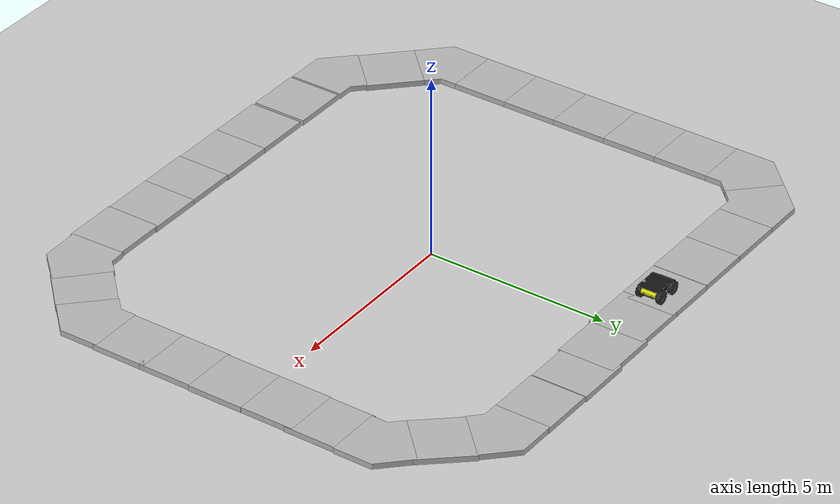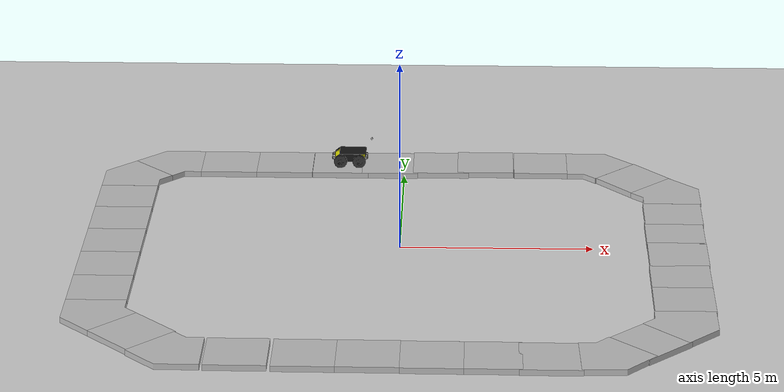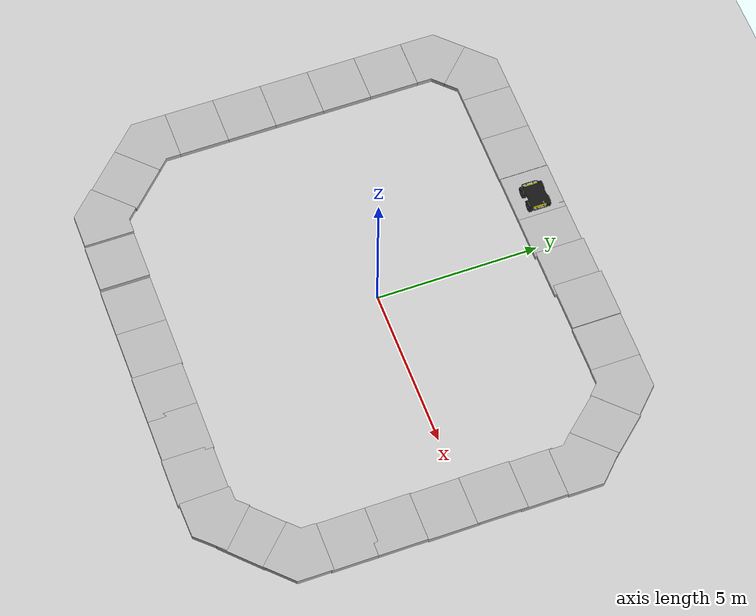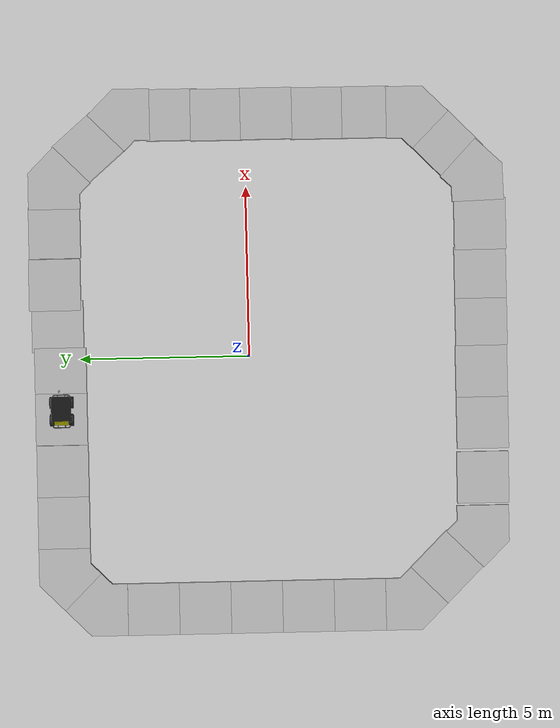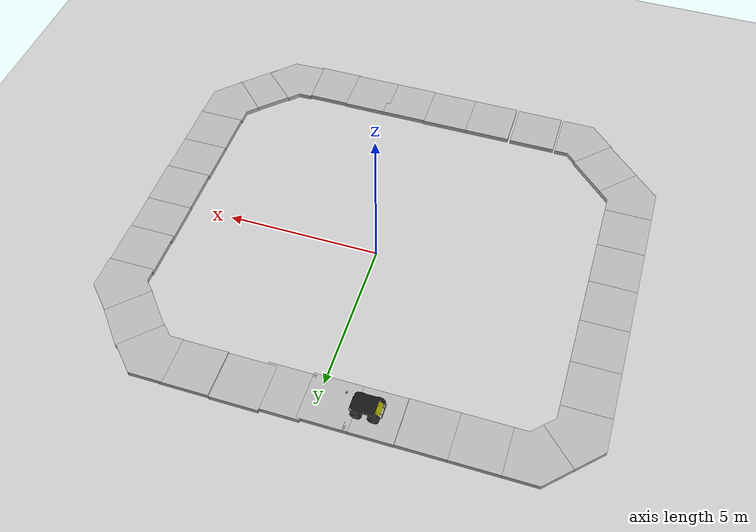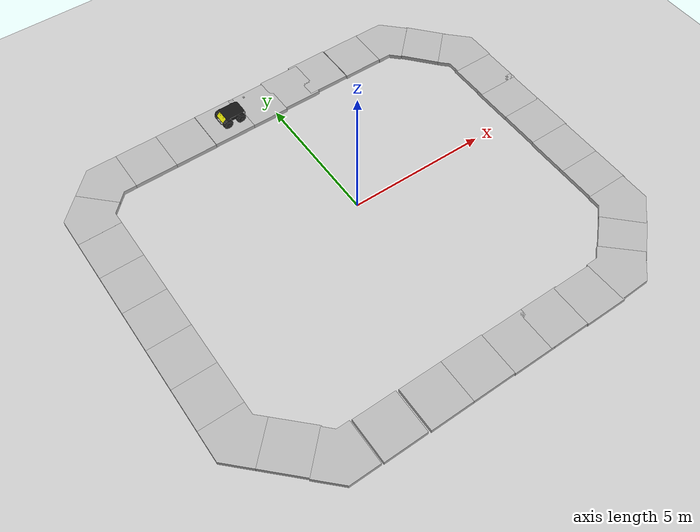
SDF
<sdf version="1.6">
 <world name="default">
  <light name="sun" type="directional">
   <pose>0 0 10 0 -0 0</pose>
   <diffuse>0.8 0.8 0.8 1</diffuse>
   <specular>0.2 0.2 0.2 1</specular>
   <attenuation>
    <range>1000</range>
    <constant>0.9</constant>
    <linear>0.01</linear>
    <quadratic>0.001</quadratic>
   </attenuation>
   <direction>-0.5 0.1 -0.9</direction>
  </light>
  <model name="ground_plane">
   <static>1</static>
   <link name="link">
    <collision name="collision">
     <geometry><plane><normal>0 0 1</normal><size>100 100</size></plane></geometry>
     <surface>
      <contact><collide_bitmask>65535</collide_bitmask></contact>
      <friction><ode><mu>100</mu><mu2>50</mu2></ode></friction>
     </surface>
    </collision>
    <visual name="visual">
     <cast_shadows>0</cast_shadows>
     <geometry><plane><normal>0 0 1</normal><size>100 100</size></plane></geometry>
     <material>
      <script><uri>file://media/materials/scripts/gazebo.material</uri><name>Gazebo/Grey</name></script>
     </material>
    </visual>
   </link>
  </model>
  <gravity>0 0 -9.8</gravity>
  <magnetic_field>6e-06 2.3e-05 -4.2e-05</magnetic_field>
  <atmosphere type="adiabatic"/>
  <physics name="default_physics" default="0" type="ode">
   <max_step_size>0.001</max_step_size>
   <real_time_factor>1</real_time_factor>
   <real_time_update_rate>1000</real_time_update_rate>
  </physics>
  <scene><ambient>0.4 0.4 0.4 1</ambient><background>0.7 0.7 0.7 1</background><shadows>1</shadows></scene>
  <spherical_coordinates>
   <surface_model>EARTH_WGS84</surface_model>
   <latitude_deg>0</latitude_deg>
   <longitude_deg>0</longitude_deg>
   <elevation>0</elevation>
   <heading_deg>0</heading_deg>
  </spherical_coordinates>
  <model name="walkway_metal_45">
   <static>1</static>
   <link name="link">
    <collision name="collision">
     <pose>0 0.538815 0.076075 0 -0 0</pose>
     <geometry><box><size>1.524 1.07763 0.15215</size></box></geometry>
    </collision>
    <collision name="collision2">
     <pose>0.15793 0.92 0.076075 0 0 -0.785398</pose>
     <geometry><box><size>1.524 1.07763 0.15215</size></box></geometry>
    </collision>
    <visual name="visual">
     <geometry>
      <mesh><scale>0.001 0.001 0.001</scale><uri>model://walkway_metal_45/meshes/mesh.obj</uri></mesh>
     </geometry>
    </visual>
   </link>
   <pose>-7.41453 3.73485 -0.000254 0 -0 0</pose>
  </model>
  <model name="walkway_metal_45_0">
   <static>1</static>
   <link name="link">
    <collision name="collision">
     <pose>0 0.538815 0.076075 0 -0 0</pose>
     <geometry><box><size>1.524 1.07763 0.15215</size></box></geometry>
    </collision>
    <collision name="collision2">
     <pose>0.15793 0.92 0.076075 0 0 -0.785398</pose>
     <geometry><box><size>1.524 1.07763 0.15215</size></box></geometry>
    </collision>
    <visual name="visual">
     <geometry>
      <mesh><scale>0.001 0.001 0.001</scale><uri>model://walkway_metal_45/meshes/mesh.obj</uri></mesh>
     </geometry>
    </visual>
   </link>
   <pose>-6.87552 5.03558 -0.000254 0 0 -0.785398</pose>
  </model>
  <model name="walkway_metal_straight">
   <static>1</static>
   <link name="link">
    <collision name="collision">
     <pose>0 0.762 0.076075 0 -0 0</pose>
     <geometry><box><size>1.524 1.524 0.15215</size></box></geometry>
    </collision>
    <visual name="visual">
     <geometry>
      <mesh><scale>0.001 0.001 0.001</scale><uri>model://walkway_metal_straight/meshes/mesh.obj</uri></mesh>
     </geometry>
    </visual>
   </link>
   <pose>-5.57462 5.5742 -0.000508 0 0 -1.5708</pose>
  </model>
  <model name="walkway_metal_straight_0">
   <static>1</static>
   <link name="link">
    <collision name="collision">
     <pose>0 0.762 0.076075 0 -0 0</pose>
     <geometry><box><size>1.524 1.524 0.15215</size></box></geometry>
    </collision>
    <visual name="visual">
     <geometry>
      <mesh><scale>0.001 0.001 0.001</scale><uri>model://walkway_metal_straight/meshes/mesh.obj</uri></mesh>
     </geometry>
    </visual>
   </link>
   <pose>-2.52662 5.5742 -0.000508 0 -0 1.5708</pose>
  </model>
  <model name="walkway_metal_straight_1">
   <static>1</static>
   <link name="link">
    <collision name="collision">
     <pose>0 0.762 0.076075 0 -0 0</pose>
     <geometry><box><size>1.524 1.524 0.15215</size></box></geometry>
    </collision>
    <visual name="visual">
     <geometry>
      <mesh><scale>0.001 0.001 0.001</scale><uri>model://walkway_metal_straight/meshes/mesh.obj</uri></mesh>
     </geometry>
    </visual>
   </link>
   <pose>-2.51644 5.58382 -0.000508 0 0 -1.5708</pose>
  </model>
  <model name="walkway_metal_straight_2">
   <static>1</static>
   <link name="link">
    <collision name="collision">
     <pose>0 0.762 0.076075 0 -0 0</pose>
     <geometry><box><size>1.524 1.524 0.15215</size></box></geometry>
    </collision>
    <visual name="visual">
     <geometry>
      <mesh><scale>0.001 0.001 0.001</scale><uri>model://walkway_metal_straight/meshes/mesh.obj</uri></mesh>
     </geometry>
    </visual>
   </link>
   <pose>-1.16667 5.58386 -0.000508 0 0 -1.5708</pose>
  </model>
  <model name="walkway_metal_45_3">
   <static>1</static>
   <link name="link">
    <collision name="collision">
     <pose>0 0.538815 0.076075 0 -0 0</pose>
     <geometry><box><size>1.524 1.07763 0.15215</size></box></geometry>
    </collision>
    <collision name="collision2">
     <pose>0.15793 0.92 0.076075 0 0 -0.785398</pose>
     <geometry><box><size>1.524 1.07763 0.15215</size></box></geometry>
    </collision>
    <visual name="visual">
     <geometry>
      <mesh><scale>0.001 0.001 0.001</scale><uri>model://walkway_metal_45/meshes/mesh.obj</uri></mesh>
     </geometry>
    </visual>
   </link>
   <pose>4.45182 5.67103 -0.000254 0 0 -1.5708</pose>
  </model>
  <model name="walkway_metal_45_4">
   <static>1</static>
   <link name="link">
    <collision name="collision">
     <pose>0 0.538815 0.076075 0 -0 0</pose>
     <geometry><box><size>1.524 1.07763 0.15215</size></box></geometry>
    </collision>
    <collision name="collision2">
     <pose>0.15793 0.92 0.076075 0 0 -0.785398</pose>
     <geometry><box><size>1.524 1.07763 0.15215</size></box></geometry>
    </collision>
    <visual name="visual">
     <geometry>
      <mesh><scale>0.001 0.001 0.001</scale><uri>model://walkway_metal_45/meshes/mesh.obj</uri></mesh>
     </geometry>
    </visual>
   </link>
   <pose>6.66734 4.1085 -0.000254 0 0 -2.35619</pose>
  </model>
  <model name="walkway_metal_straight_3">
   <static>1</static>
   <link name="link">
    <collision name="collision">
     <pose>0 0.762 0.076075 0 -0 0</pose>
     <geometry><box><size>1.524 1.524 0.15215</size></box></geometry>
    </collision>
    <visual name="visual">
     <geometry>
      <mesh><scale>0.001 0.001 0.001</scale><uri>model://walkway_metal_straight/meshes/mesh.obj</uri></mesh>
     </geometry>
    </visual>
   </link>
   <pose>7.16236 0.128675 -0.000508 0 0 -3.14159</pose>
  </model>
  <model name="walkway_metal_straight_4">
   <static>1</static>
   <link name="link">
    <collision name="collision">
     <pose>0 0.762 0.076075 0 -0 0</pose>
     <geometry><box><size>1.524 1.524 0.15215</size></box></geometry>
    </collision>
    <visual name="visual">
     <geometry>
      <mesh><scale>0.001 0.001 0.001</scale><uri>model://walkway_metal_straight/meshes/mesh.obj</uri></mesh>
     </geometry>
    </visual>
   </link>
   <pose>7.14064 -1.35181 -0.000508 0 0 -3.14159</pose>
  </model>
  <model name="walkway_metal_45_5">
   <static>1</static>
   <link name="link">
    <collision name="collision">
     <pose>0 0.538815 0.076075 0 -0 0</pose>
     <geometry><box><size>1.524 1.07763 0.15215</size></box></geometry>
    </collision>
    <collision name="collision2">
     <pose>0.15793 0.92 0.076075 0 0 -0.785398</pose>
     <geometry><box><size>1.524 1.07763 0.15215</size></box></geometry>
    </collision>
    <visual name="visual">
     <geometry>
      <mesh><scale>0.001 0.001 0.001</scale><uri>model://walkway_metal_45/meshes/mesh.obj</uri></mesh>
     </geometry>
    </visual>
   </link>
   <pose>7.11883 -4.18264 -0.000254 0 0 -3.14159</pose>
  </model>
  <model name="walkway_metal_straight_5">
   <static>1</static>
   <link name="link">
    <collision name="collision">
     <pose>0 0.762 0.076075 0 -0 0</pose>
     <geometry><box><size>1.524 1.524 0.15215</size></box></geometry>
    </collision>
    <visual name="visual">
     <geometry>
      <mesh><scale>0.001 0.001 0.001</scale><uri>model://walkway_metal_straight/meshes/mesh.obj</uri></mesh>
     </geometry>
    </visual>
   </link>
   <pose>7.13941 -2.74334 -0.000508 0 -0 3.14159</pose>
  </model>
  <model name="walkway_metal_45_9">
   <static>1</static>
   <link name="link">
    <collision name="collision">
     <pose>0 0.538815 0.076075 0 -0 0</pose>
     <geometry><box><size>1.524 1.07763 0.15215</size></box></geometry>
    </collision>
    <collision name="collision2">
     <pose>0.15793 0.92 0.076075 0 0 -0.785398</pose>
     <geometry><box><size>1.524 1.07763 0.15215</size></box></geometry>
    </collision>
    <visual name="visual">
     <geometry>
      <mesh><scale>0.001 0.001 0.001</scale><uri>model://walkway_metal_45/meshes/mesh.obj</uri></mesh>
     </geometry>
    </visual>
   </link>
   <pose>5.74542 -6.27089 -0.000254 0 -0 2.38587</pose>
  </model>
  <model name="walkway_metal_straight_6">
   <static>1</static>
   <link name="link">
    <collision name="collision">
     <pose>0 0.762 0.076075 0 -0 0</pose>
     <geometry><box><size>1.524 1.524 0.15215</size></box></geometry>
    </collision>
    <visual name="visual">
     <geometry>
      <mesh><scale>0.001 0.001 0.001</scale><uri>model://walkway_metal_straight/meshes/mesh.obj</uri></mesh>
     </geometry>
    </visual>
   </link>
   <pose>3.01304 -6.89051 -0.000508 0 0 -1.5708</pose>
  </model>
  <model name="walkway_metal_straight_7">
   <static>1</static>
   <link name="link">
    <collision name="collision">
     <pose>0 0.762 0.076075 0 -0 0</pose>
     <geometry><box><size>1.524 1.524 0.15215</size></box></geometry>
    </collision>
    <visual name="visual">
     <geometry>
      <mesh><scale>0.001 0.001 0.001</scale><uri>model://walkway_metal_straight/meshes/mesh.obj</uri></mesh>
     </geometry>
    </visual>
   </link>
   <pose>3.10016 -6.86844 -0.000508 0 -0 1.5708</pose>
  </model>
  <model name="walkway_metal_straight_8">
   <static>1</static>
   <link name="link">
    <collision name="collision">
     <pose>0 0.762 0.076075 0 -0 0</pose>
     <geometry><box><size>1.524 1.524 0.15215</size></box></geometry>
    </collision>
    <visual name="visual">
     <geometry>
      <mesh><scale>0.001 0.001 0.001</scale><uri>model://walkway_metal_straight/meshes/mesh.obj</uri></mesh>
     </geometry>
    </visual>
   </link>
   <pose>1.70685 -6.86858 -0.000508 0 -0 1.5708</pose>
  </model>
  <model name="walkway_metal_straight_9">
   <static>1</static>
   <link name="link">
    <collision name="collision">
     <pose>0 0.762 0.076075 0 -0 0</pose>
     <geometry><box><size>1.524 1.524 0.15215</size></box></geometry>
    </collision>
    <visual name="visual">
     <geometry>
      <mesh><scale>0.001 0.001 0.001</scale><uri>model://walkway_metal_straight/meshes/mesh.obj</uri></mesh>
     </geometry>
    </visual>
   </link>
   <pose>0.182828 -6.84693 -0.000508 0 -0 1.5708</pose>
  </model>
  <model name="walkway_metal_straight_10">
   <static>1</static>
   <link name="link">
    <collision name="collision">
     <pose>0 0.762 0.076075 0 -0 0</pose>
     <geometry><box><size>1.524 1.524 0.15215</size></box></geometry>
    </collision>
    <visual name="visual">
     <geometry>
      <mesh><scale>0.001 0.001 0.001</scale><uri>model://walkway_metal_straight/meshes/mesh.obj</uri></mesh>
     </geometry>
    </visual>
   </link>
   <pose>-1.34117 -6.84665 -0.000508 0 -0 1.5708</pose>
  </model>
  <model name="walkway_metal_straight_11">
   <static>1</static>
   <link name="link">
    <collision name="collision">
     <pose>0 0.762 0.076075 0 -0 0</pose>
     <geometry><box><size>1.524 1.524 0.15215</size></box></geometry>
    </collision>
    <visual name="visual">
     <geometry>
      <mesh><scale>0.001 0.001 0.001</scale><uri>model://walkway_metal_straight/meshes/mesh.obj</uri></mesh>
     </geometry>
    </visual>
   </link>
   <pose>-2.95228 -6.825 -0.000508 0 -0 1.5708</pose>
  </model>
  <model name="walkway_metal_45_11">
   <static>1</static>
   <link name="link">
    <collision name="collision">
     <pose>0 0.538815 0.076075 0 -0 0</pose>
     <geometry><box><size>1.524 1.07763 0.15215</size></box></geometry>
    </collision>
    <collision name="collision2">
     <pose>0.15793 0.92 0.076075 0 0 -0.785398</pose>
     <geometry><box><size>1.524 1.07763 0.15215</size></box></geometry>
    </collision>
    <visual name="visual">
     <geometry>
      <mesh><scale>0.001 0.001 0.001</scale><uri>model://walkway_metal_45/meshes/mesh.obj</uri></mesh>
     </geometry>
    </visual>
   </link>
   <pose>-4.54162 -6.80321 -0.000254 0 -0 1.5708</pose>
  </model>
  <model name="walkway_metal_45_12">
   <static>1</static>
   <link name="link">
    <collision name="collision">
     <pose>0 0.538815 0.076075 0 -0 0</pose>
     <geometry><box><size>1.524 1.07763 0.15215</size></box></geometry>
    </collision>
    <collision name="collision2">
     <pose>0.15793 0.92 0.076075 0 0 -0.785398</pose>
     <geometry><box><size>1.524 1.07763 0.15215</size></box></geometry>
    </collision>
    <visual name="visual">
     <geometry>
      <mesh><scale>0.001 0.001 0.001</scale><uri>model://walkway_metal_45/meshes/mesh.obj</uri></mesh>
     </geometry>
    </visual>
   </link>
   <pose>-6.87643 -5.18658 -0.000254 0 -0 0.785402</pose>
  </model>
  <model name="walkway_metal_straight_12">
   <static>1</static>
   <link name="link">
    <collision name="collision">
     <pose>0 0.762 0.076075 0 -0 0</pose>
     <geometry><box><size>1.524 1.524 0.15215</size></box></geometry>
    </collision>
    <visual name="visual">
     <geometry>
      <mesh><scale>0.001 0.001 0.001</scale><uri>model://walkway_metal_straight/meshes/mesh.obj</uri></mesh>
     </geometry>
    </visual>
   </link>
   <pose>-5.7988 -6.2642 -0.000508 0 -0 0.785402</pose>
  </model>
  <model name="walkway_metal_straight_13">
   <static>1</static>
   <link name="link">
    <collision name="collision">
     <pose>0 0.762 0.076075 0 -0 0</pose>
     <geometry><box><size>1.524 1.524 0.15215</size></box></geometry>
    </collision>
    <visual name="visual">
     <geometry>
      <mesh><scale>0.001 0.001 0.001</scale><uri>model://walkway_metal_straight/meshes/mesh.obj</uri></mesh>
     </geometry>
    </visual>
   </link>
   <pose>-7.41505 -3.88568 -0.000508 0 -0 4e-06</pose>
  </model>
  <model name="walkway_metal_straight_14">
   <static>1</static>
   <link name="link">
    <collision name="collision">
     <pose>0 0.762 0.076075 0 -0 0</pose>
     <geometry><box><size>1.524 1.524 0.15215</size></box></geometry>
    </collision>
    <visual name="visual">
     <geometry>
      <mesh><scale>0.001 0.001 0.001</scale><uri>model://walkway_metal_straight/meshes/mesh.obj</uri></mesh>
     </geometry>
    </visual>
   </link>
   <pose>-7.41506 -2.36168 -0.000508 0 -0 4e-06</pose>
  </model>
  <model name="walkway_metal_straight_15">
   <static>1</static>
   <link name="link">
    <collision name="collision">
     <pose>0 0.762 0.076075 0 -0 0</pose>
     <geometry><box><size>1.524 1.524 0.15215</size></box></geometry>
    </collision>
    <visual name="visual">
     <geometry>
      <mesh><scale>0.001 0.001 0.001</scale><uri>model://walkway_metal_straight/meshes/mesh.obj</uri></mesh>
     </geometry>
    </visual>
   </link>
   <pose>-7.41507 -0.837679 -0.000508 0 -0 4e-06</pose>
  </model>
  <model name="walkway_metal_straight_16">
   <static>1</static>
   <link name="link">
    <collision name="collision">
     <pose>0 0.762 0.076075 0 -0 0</pose>
     <geometry><box><size>1.524 1.524 0.15215</size></box></geometry>
    </collision>
    <visual name="visual">
     <geometry>
      <mesh><scale>0.001 0.001 0.001</scale><uri>model://walkway_metal_straight/meshes/mesh.obj</uri></mesh>
     </geometry>
    </visual>
   </link>
   <pose>-7.41507 0.686321 -0.000508 0 -0 4e-06</pose>
  </model>
  <model name="walkway_metal_straight_17">
   <static>1</static>
   <link name="link">
    <collision name="collision">
     <pose>0 0.762 0.076075 0 -0 0</pose>
     <geometry><box><size>1.524 1.524 0.15215</size></box></geometry>
    </collision>
    <visual name="visual">
     <geometry>
      <mesh><scale>0.001 0.001 0.001</scale><uri>model://walkway_metal_straight/meshes/mesh.obj</uri></mesh>
     </geometry>
    </visual>
   </link>
   <pose>-7.41508 2.21032 -0.000508 0 -0 4e-06</pose>
  </model>
  <audio><device>default</device></audio>
  <model name="/">
   <link name="base_link">
    <inertial>
     <pose>-0.00065 -0.085 0.062 0 -0 0</pose>
     <mass>46.034</mass>
     <inertia>
      <ixx>0.602204</ixx>
      <ixy>-0.0236405</ixy>
      <ixz>-0.119703</ixz>
      <iyy>1.73861</iyy>
      <iyz>-0.00154446</iyz>
      <izz>2.0296</izz>
     </inertia>
    </inertial>
    <collision name="base_link_collision">
     <pose>0 0 0.061875 0 -0 0</pose>
     <geometry><box><size>0.9874 0.5709 0.12375</size></box></geometry>
    </collision>
    <collision name="base_link_collision_1">
     <pose>0 0 0.185625 0 -0 0</pose>
     <geometry><box><size>0.78992 0.5709 0.12375</size></box></geometry>
    </collision>
    <collision name="base_link_fixed_joint_lump__top_plate_link_collision_2">
     <pose>0.0812 0 0.245 0 -0 0</pose>
     <geometry>
      <mesh>
       <scale>1 1 1</scale>
       <uri>/home/daria/catkin_ws/src/husky/husky_description/meshes/top_plate.dae</uri>
      </mesh>
     </geometry>
    </collision>
    <collision name="base_link_fixed_joint_lump__top_plate_link_collision_3">
     <pose>0.0812 0 0.245 0 -0 0</pose>
     <geometry><box><size>0.32 0.41 0.09</size></box></geometry>
    </collision>
    <visual name="base_link_visual">
     <geometry>
      <mesh>
       <scale>1 1 1</scale>
       <uri>/home/daria/catkin_ws/src/husky/husky_description/meshes/base_link.dae</uri>
      </mesh>
     </geometry>
    </visual>
    <visual name="base_link_fixed_joint_lump__camera_box_visual_1">
     <pose>0.6 0 0.6 0 1 0</pose>
     <geometry><box><size>0.05 0.05 0.05</size></box></geometry>
     <material><script><uri>__default__</uri><name>__default__</name></script></material>
    </visual>
    <visual name="base_link_fixed_joint_lump__front_bumper_link_visual_2">
     <pose>0.48 0 0.091 0 -0 0</pose>
     <geometry>
      <mesh>
       <scale>1 1 1</scale>
       <uri>/home/daria/catkin_ws/src/husky/husky_description/meshes/bumper.dae</uri>
      </mesh>
     </geometry>
    </visual>
    <visual name="base_link_fixed_joint_lump__rear_bumper_link_visual_3">
     <pose>-0.48 0 0.091 0 -0 3.14159</pose>
     <geometry>
      <mesh>
       <scale>1 1 1</scale>
       <uri>/home/daria/catkin_ws/src/husky/husky_description/meshes/bumper.dae</uri>
      </mesh>
     </geometry>
    </visual>
    <visual name="base_link_fixed_joint_lump__top_chassis_link_visual_4">
     <geometry>
      <mesh>
       <scale>1 1 1</scale>
       <uri>/home/daria/catkin_ws/src/husky/husky_description/meshes/top_chassis.dae</uri>
      </mesh>
     </geometry>
    </visual>
    <visual name="base_link_fixed_joint_lump__top_plate_link_visual_5">
     <pose>0.0812 0 0.245 0 -0 0</pose>
     <geometry>
      <mesh>
       <scale>1 1 1</scale>
       <uri>/home/daria/catkin_ws/src/husky/husky_description/meshes/top_plate.dae</uri>
      </mesh>
     </geometry>
    </visual>
    <visual name="base_link_fixed_joint_lump__user_rail_link_visual_6">
     <pose>0.272 0 0.245 0 -0 0</pose>
     <geometry>
      <mesh>
       <scale>1 1 1</scale>
       <uri>/home/daria/catkin_ws/src/husky/husky_description/meshes/user_rail.dae</uri>
      </mesh>
     </geometry>
    </visual>
    <sensor name="camera1" type="camera">
     <update_rate>30</update_rate>
     <camera name="head">
      <horizontal_fov>1.2</horizontal_fov>
      <image><width>800</width><height>800</height><format>R8G8B8</format></image>
      <clip><near>0.02</near><far>300</far></clip>
      <noise><type>gaussian</type><mean>0</mean><stddev>0.007</stddev></noise>
     </camera>
     <plugin name="camera_controller" filename="libgazebo_ros_camera.so">
      <alwaysOn>1</alwaysOn>
      <updateRate>0.0</updateRate>
      <cameraName>husky/camera1</cameraName>
      <imageTopicName>image_raw</imageTopicName>
      <cameraInfoTopicName>camera_info</cameraInfoTopicName>
      <frameName>camera_box</frameName>
      <hackBaseline>0.07</hackBaseline>
      <distortionK1>0.0</distortionK1>
      <distortionK2>0.0</distortionK2>
      <distortionK3>0.0</distortionK3>
      <distortionT1>0.0</distortionT1>
      <distortionT2>0.0</distortionT2>
      <robotNamespace>/</robotNamespace>
     </plugin>
     <pose>0.6 0 0.6 0 1 0</pose>
    </sensor>
   </link>
   <link name="front_left_wheel_link">
    <pose>0.256 0.2854 0.03282 0 -0 0</pose>
    <inertial>
     <mass>2.637</mass>
     <inertia><ixx>0.02467</ixx><ixy>0</ixy><ixz>0</ixz><iyy>0.04411</iyy><iyz>0</iyz><izz>0.02467</izz></inertia>
    </inertial>
    <collision name="front_left_wheel_link_collision">
     <pose>0 0 0 1.57079 -0 0</pose>
     <geometry><cylinder><length>0.1143</length><radius>0.1651</radius></cylinder></geometry>
     <surface>
      <contact><ode><kp>1e+07</kp><kd>1</kd></ode></contact>
      <friction><ode><mu>1</mu><mu2>1</mu2><fdir1>1 0 0</fdir1></ode></friction>
     </surface>
    </collision>
    <visual name="front_left_wheel_link_visual">
     <geometry>
      <mesh><scale>1 1 1</scale><uri>/home/daria/catkin_ws/src/husky/husky_description/meshes/wheel.dae</uri></mesh>
     </geometry>
     <material><script><uri>__default__</uri><name>__default__</name></script></material>
    </visual>
   </link>
   <joint name="front_left_wheel" type="revolute">
    <child>front_left_wheel_link</child>
    <parent>base_link</parent>
    <axis>
     <xyz>0 1 0</xyz>
     <limit><lower>-1e+16</lower><upper>1e+16</upper></limit>
     <dynamics><spring_reference>0</spring_reference><spring_stiffness>0</spring_stiffness></dynamics>
     <use_parent_model_frame>1</use_parent_model_frame>
    </axis>
   </joint>
   <link name="front_right_wheel_link">
    <pose>0.256 -0.2854 0.03282 0 -0 0</pose>
    <inertial>
     <mass>2.637</mass>
     <inertia><ixx>0.02467</ixx><ixy>0</ixy><ixz>0</ixz><iyy>0.04411</iyy><iyz>0</iyz><izz>0.02467</izz></inertia>
    </inertial>
    <collision name="front_right_wheel_link_collision">
     <pose>0 0 0 1.57079 -0 0</pose>
     <geometry><cylinder><length>0.1143</length><radius>0.1651</radius></cylinder></geometry>
     <surface>
      <contact><ode><kp>1e+07</kp><kd>1</kd></ode></contact>
      <friction><ode><mu>1</mu><mu2>1</mu2><fdir1>1 0 0</fdir1></ode></friction>
     </surface>
    </collision>
    <visual name="front_right_wheel_link_visual">
     <geometry>
      <mesh><scale>1 1 1</scale><uri>/home/daria/catkin_ws/src/husky/husky_description/meshes/wheel.dae</uri></mesh>
     </geometry>
     <material><script><uri>__default__</uri><name>__default__</name></script></material>
    </visual>
   </link>
   <joint name="front_right_wheel" type="revolute">
    <child>front_right_wheel_link</child>
    <parent>base_link</parent>
    <axis>
     <xyz>0 1 0</xyz>
     <limit><lower>-1e+16</lower><upper>1e+16</upper></limit>
     <dynamics><spring_reference>0</spring_reference><spring_stiffness>0</spring_stiffness></dynamics>
     <use_parent_model_frame>1</use_parent_model_frame>
    </axis>
   </joint>
   <link name="rear_left_wheel_link">
    <pose>-0.256 0.2854 0.03282 0 -0 0</pose>
    <inertial>
     <mass>2.637</mass>
     <inertia><ixx>0.02467</ixx><ixy>0</ixy><ixz>0</ixz><iyy>0.04411</iyy><iyz>0</iyz><izz>0.02467</izz></inertia>
    </inertial>
    <collision name="rear_left_wheel_link_collision">
     <pose>0 0 0 1.57079 -0 0</pose>
     <geometry><cylinder><length>0.1143</length><radius>0.1651</radius></cylinder></geometry>
     <surface>
      <contact><ode><kp>1e+07</kp><kd>1</kd></ode></contact>
      <friction><ode><mu>1</mu><mu2>1</mu2><fdir1>1 0 0</fdir1></ode></friction>
     </surface>
    </collision>
    <visual name="rear_left_wheel_link_visual">
     <geometry>
      <mesh><scale>1 1 1</scale><uri>/home/daria/catkin_ws/src/husky/husky_description/meshes/wheel.dae</uri></mesh>
     </geometry>
     <material><script><uri>__default__</uri><name>__default__</name></script></material>
    </visual>
   </link>
   <joint name="rear_left_wheel" type="revolute">
    <child>rear_left_wheel_link</child>
    <parent>base_link</parent>
    <axis>
     <xyz>0 1 0</xyz>
     <limit><lower>-1e+16</lower><upper>1e+16</upper></limit>
     <dynamics><spring_reference>0</spring_reference><spring_stiffness>0</spring_stiffness></dynamics>
     <use_parent_model_frame>1</use_parent_model_frame>
    </axis>
   </joint>
   <link name="rear_right_wheel_link">
    <pose>-0.256 -0.2854 0.03282 0 -0 0</pose>
    <inertial>
     <mass>2.637</mass>
     <inertia><ixx>0.02467</ixx><ixy>0</ixy><ixz>0</ixz><iyy>0.04411</iyy><iyz>0</iyz><izz>0.02467</izz></inertia>
    </inertial>
    <collision name="rear_right_wheel_link_collision">
     <pose>0 0 0 1.57079 -0 0</pose>
     <geometry><cylinder><length>0.1143</length><radius>0.1651</radius></cylinder></geometry>
     <surface>
      <contact><ode><kp>1e+07</kp><kd>1</kd></ode></contact>
      <friction><ode><mu>1</mu><mu2>1</mu2><fdir1>1 0 0</fdir1></ode></friction>
     </surface>
    </collision>
    <visual name="rear_right_wheel_link_visual">
     <geometry>
      <mesh><scale>1 1 1</scale><uri>/home/daria/catkin_ws/src/husky/husky_description/meshes/wheel.dae</uri></mesh>
     </geometry>
     <material><script><uri>__default__</uri><name>__default__</name></script></material>
    </visual>
   </link>
   <joint name="rear_right_wheel" type="revolute">
    <child>rear_right_wheel_link</child>
    <parent>base_link</parent>
    <axis>
     <xyz>0 1 0</xyz>
     <limit><lower>-1e+16</lower><upper>1e+16</upper></limit>
     <dynamics><spring_reference>0</spring_reference><spring_stiffness>0</spring_stiffness></dynamics>
     <use_parent_model_frame>1</use_parent_model_frame>
    </axis>
   </joint>
   <plugin name="gazebo_ros_control" filename="libgazebo_ros_control.so">
    <robotNamespace>/</robotNamespace>
   </plugin>
   <plugin name="imu_controller" filename="libhector_gazebo_ros_imu.so">
    <robotNamespace>/</robotNamespace>
    <updateRate>50.0</updateRate>
    <bodyName>base_link</bodyName>
    <topicName>imu/data</topicName>
    <accelDrift>0.005 0.005 0.005</accelDrift>
    <accelGaussianNoise>0.005 0.005 0.005</accelGaussianNoise>
    <rateDrift>0.005 0.005 0.005</rateDrift>
    <rateGaussianNoise>0.005 0.005 0.005</rateGaussianNoise>
    <headingDrift>0.005</headingDrift>
    <headingGaussianNoise>0.005</headingGaussianNoise>
   </plugin>
   <static>0</static>
   <plugin name="gps_controller" filename="libhector_gazebo_ros_gps.so">
    <robotNamespace>/</robotNamespace>
    <updateRate>40</updateRate>
    <bodyName>base_link</bodyName>
    <frameId>base_link</frameId>
    <topicName>navsat/fix</topicName>
    <velocityTopicName>navsat/vel</velocityTopicName>
    <referenceLatitude>49.9</referenceLatitude>
    <referenceLongitude>8.9</referenceLongitude>
    <referenceHeading>0</referenceHeading>
    <referenceAltitude>0</referenceAltitude>
    <drift>0.0001 0.0001 0.0001</drift>
   </plugin>
   <pose>-1.51251 5.5493 0.283915 7e-06 -0 0.003547</pose>
  </model>
  <model name="walkway_metal_straight_16_clone">
   <static>1</static>
   <link name="link">
    <collision name="collision">
     <pose>0 0.762 0.076075 0 -0 0</pose>
     <geometry><box><size>1.524 1.524 0.15215</size></box></geometry>
    </collision>
    <visual name="visual">
     <geometry>
      <mesh><scale>0.001 0.001 0.001</scale><uri>model://walkway_metal_straight/meshes/mesh.obj</uri></mesh>
     </geometry>
    </visual>
   </link>
   <pose>6.71996 4.06355 -0.000508 0 -0 0.716604</pose>
  </model>
  <model name="walkway_metal_straight_16_clone_0">
   <static>1</static>
   <link name="link">
    <collision name="collision">
     <pose>0 0.762 0.076075 0 -0 0</pose>
     <geometry><box><size>1.524 1.524 0.15215</size></box></geometry>
    </collision>
    <visual name="visual">
     <geometry>
      <mesh><scale>0.001 0.001 0.001</scale><uri>model://walkway_metal_straight/meshes/mesh.obj</uri></mesh>
     </geometry>
    </visual>
   </link>
   <pose>7.15558 0.077829 -0.000508 0 -0 4e-06</pose>
  </model>
  <model name="walkway_metal_straight_16_clone_1">
   <static>1</static>
   <link name="link">
    <collision name="collision">
     <pose>0 0.762 0.076075 0 -0 0</pose>
     <geometry><box><size>1.524 1.524 0.15215</size></box></geometry>
    </collision>
    <visual name="visual">
     <geometry>
      <mesh><scale>0.001 0.001 0.001</scale><uri>model://walkway_metal_straight/meshes/mesh.obj</uri></mesh>
     </geometry>
    </visual>
   </link>
   <pose>7.17748 1.38469 -0.000508 0 -0 4e-06</pose>
  </model>
  <model name="walkway_metal_straight_2_clone">
   <static>1</static>
   <link name="link">
    <collision name="collision">
     <pose>0 0.762 0.076075 0 -0 0</pose>
     <geometry><box><size>1.524 1.524 0.15215</size></box></geometry>
    </collision>
    <visual name="visual">
     <geometry>
      <mesh><scale>0.001 0.001 0.001</scale><uri>model://walkway_metal_straight/meshes/mesh.obj</uri></mesh>
     </geometry>
    </visual>
   </link>
   <pose>2.99838 5.68234 -0.000508 0 0 -1.5708</pose>
  </model>
  <model name="walkway_metal_straight_2_clone_0">
   <static>1</static>
   <link name="link">
    <collision name="collision">
     <pose>0 0.762 0.076075 0 -0 0</pose>
     <geometry><box><size>1.524 1.524 0.15215</size></box></geometry>
    </collision>
    <visual name="visual">
     <geometry>
      <mesh><scale>0.001 0.001 0.001</scale><uri>model://walkway_metal_straight/meshes/mesh.obj</uri></mesh>
     </geometry>
    </visual>
   </link>
   <pose>1.45402 5.7069 -0.000508 0 0 -1.5708</pose>
  </model>
  <model name="walkway_metal_straight_2_clone_1">
   <static>1</static>
   <link name="link">
    <collision name="collision">
     <pose>0 0.762 0.076075 0 -0 0</pose>
     <geometry><box><size>1.524 1.524 0.15215</size></box></geometry>
    </collision>
    <visual name="visual">
     <geometry>
      <mesh><scale>0.001 0.001 0.001</scale><uri>model://walkway_metal_straight/meshes/mesh.obj</uri></mesh>
     </geometry>
    </visual>
   </link>
   <pose>0.234404 5.64154 -0.000508 0 0 -1.5708</pose>
  </model>
  <model name="walkway_metal_straight_5_clone">
   <static>1</static>
   <link name="link">
    <collision name="collision">
     <pose>0 0.762 0.076075 0 -0 0</pose>
     <geometry><box><size>1.524 1.524 0.15215</size></box></geometry>
    </collision>
    <visual name="visual">
     <geometry>
      <mesh><scale>0.001 0.001 0.001</scale><uri>model://walkway_metal_straight/meshes/mesh.obj</uri></mesh>
     </geometry>
    </visual>
   </link>
   <pose>6.65685 -5.4257 -0.000508 0 -0 2.34304</pose>
  </model>
 </world>
</sdf>
